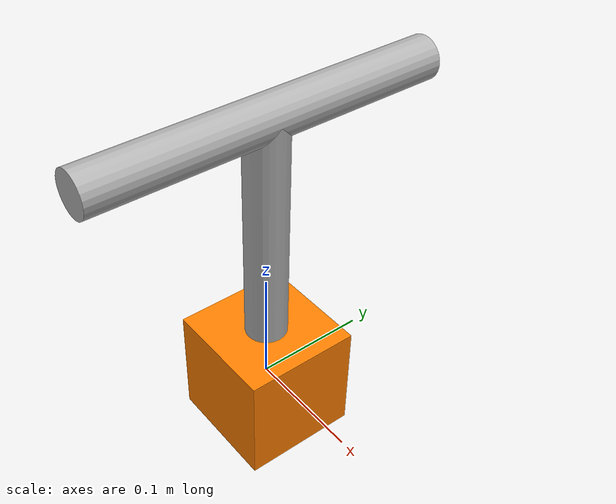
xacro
<?xml version="1.0"?>
<!-- Copyright (c) 2025-2026 Junjie Zhu -->
<!-- SPDX-License-Identifier: Apache-2.0 -->

<robot name="box_with_handle" xmlns:xacro="http://www.ros.org/wiki/xacro">

  <!-- Inertial Macros -->
  <xacro:macro name="sphere_inertial_matrix" params="m r">
    <inertial>
      <mass value="${m}"/>
      <inertia ixx="${2*m*r*r/5}" ixy="0" ixz="0"
               iyy="${2*m*r*r/5}" iyz="0"
               izz="${2*m*r*r/5}"/>
    </inertial>
  </xacro:macro>

  <xacro:macro name="cylinder_inertial_matrix" params="m r h">
    <inertial>
      <mass value="${m}"/>
      <inertia ixx="${m*(3*r*r+h*h)/12}" ixy="0" ixz="0"
               iyy="${m*(3*r*r+h*h)/12}" iyz="0"
               izz="${m*r*r/2}"/>
    </inertial>
  </xacro:macro>

  <xacro:macro name="box_inertial_matrix" params="m l w h">
    <inertial>
      <mass value="${m}"/>
      <inertia ixx="${m*(h*h + l*l)/12}" ixy="0" ixz="0"
               iyy="${m*(w*w + l*l)/12}" iyz="0"
               izz="${m*(w*w + h*h)/12}"/>
    </inertial>
  </xacro:macro>

  <xacro:property name="box_size" value="0.1" />
  <xacro:property name="box_mass" value="3.0" />

  <xacro:property name="handle_radius" value="0.018" />
  <xacro:property name="handle_mass" value="0.1" />
  <xacro:property name="handle_length" value="0.3" />

  <link name="box">
    <xacro:box_inertial_matrix m="${box_mass}" l="${box_size}" w="${box_size}" h="${box_size}"/>
    <visual>
      <geometry><box size="${box_size} ${box_size} ${box_size}"/></geometry>
      <material name="orange"><color rgba="1 0.5 0 1"/></material>
    </visual>
    <collision>
      <geometry><box size="${box_size} ${box_size} ${box_size}"/></geometry>
      <friction>
        <ode>
          <mu1>0.9</mu1>
          <mu2>0.8</mu2>
        </ode>
      </friction>
    </collision>
  </link>

  <!-- Handle Parts -->
  <link name="handle_vertical">
    <xacro:cylinder_inertial_matrix m="${handle_mass}" r="${handle_radius}" h="${handle_length}"/>

    <visual>
      <geometry><cylinder length="${handle_length}" radius="${handle_radius}"/></geometry>
      <material name="grey"><color rgba="0.7 0.7 0.7 1"/></material>
    </visual>
    <collision>
      <geometry><cylinder length="${handle_length}" radius="${handle_radius}"/></geometry>
      <surface>
        <friction>
          <ode>
            <mu>100.0</mu>
            <mu2>100.0</mu2>
          </ode>
        </friction>
        <contact>
          <ode>
            <kp>10000000.0</kp>
            <kd>1.0</kd>
            <min_depth>0.001</min_depth>
            <max_vel>0.1</max_vel>
          </ode>
        </contact>
      </surface>
    </collision>
  </link>

  <link name="handle_horizontal">
    <xacro:cylinder_inertial_matrix m="${handle_mass}" r="${handle_radius}" h="${handle_length}"/>

    <visual>
      <geometry><cylinder length="${handle_length}" radius="${handle_radius}"/></geometry>
      <material name="grey"><color rgba="0.7 0.7 0.7 1"/></material>
    </visual>
    <collision>
      <geometry><cylinder length="${handle_length}" radius="${handle_radius}"/></geometry>
      <surface>
        <friction>
          <ode>
            <mu>100.0</mu>
            <mu2>100.0</mu2>
          </ode>
        </friction>
        <contact>
          <ode>
            <kp>10000000.0</kp>
            <kd>1.0</kd>
            <min_depth>0.001</min_depth>
            <max_vel>0.1</max_vel>
          </ode>
        </contact>
      </surface>
    </collision>
  </link>

  <!-- Joints -->
  <joint name="box_to_handle" type="fixed">
    <parent link="box"/>
    <child link="handle_vertical"/>
    <origin xyz="0 0 ${box_size}" rpy="0 0 0"/>  <!-- 放在盒子顶部中央 -->
  </joint>

  <joint name="vertical_to_horizontal" type="fixed">
    <parent link="handle_vertical"/>
    <child link="handle_horizontal"/>
    <origin xyz="0 0 ${handle_length/2}" rpy="1.5708 0 0"/>  <!-- 旋转90度使其水平 -->
  </joint>

  <!-- Gazebo 插件 -->
  <gazebo>
    <plugin name="gazebo_ros_control" filename="libgazebo_ros_control.so">
      <robotNamespace>/box_with_handle</robotNamespace>
    </plugin>
  </gazebo>

</robot>
